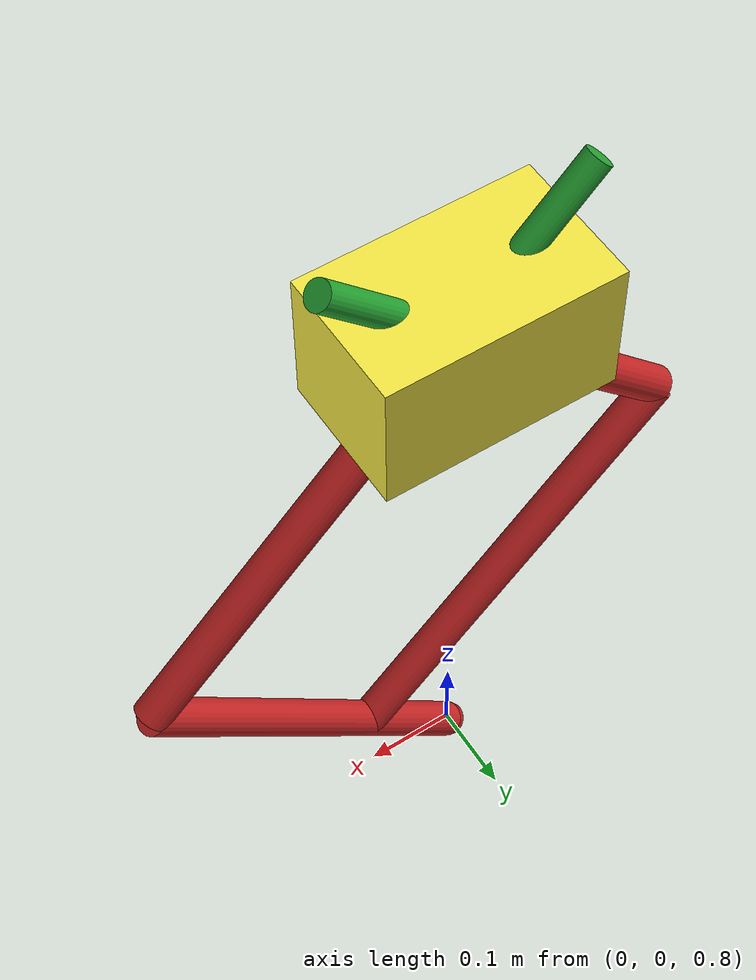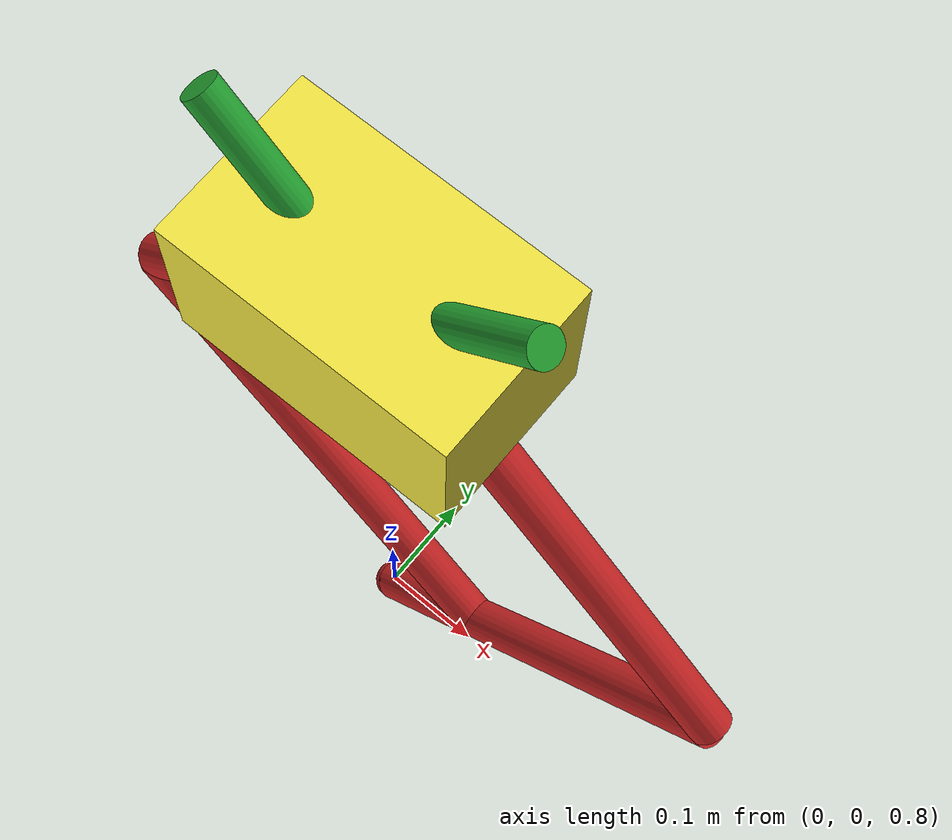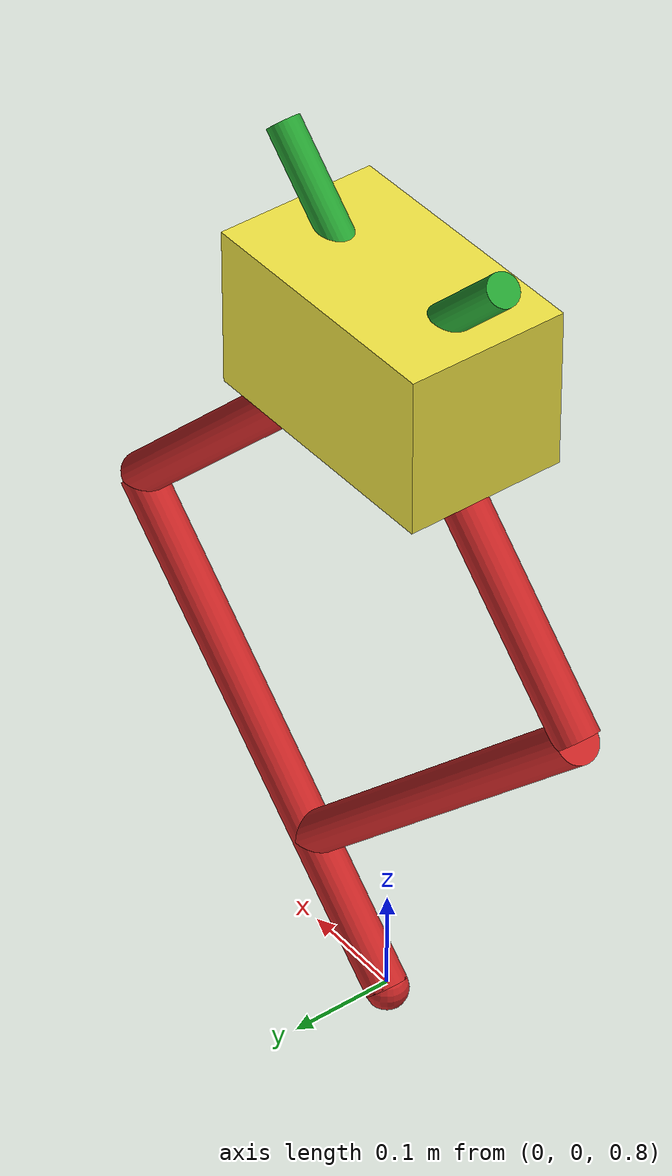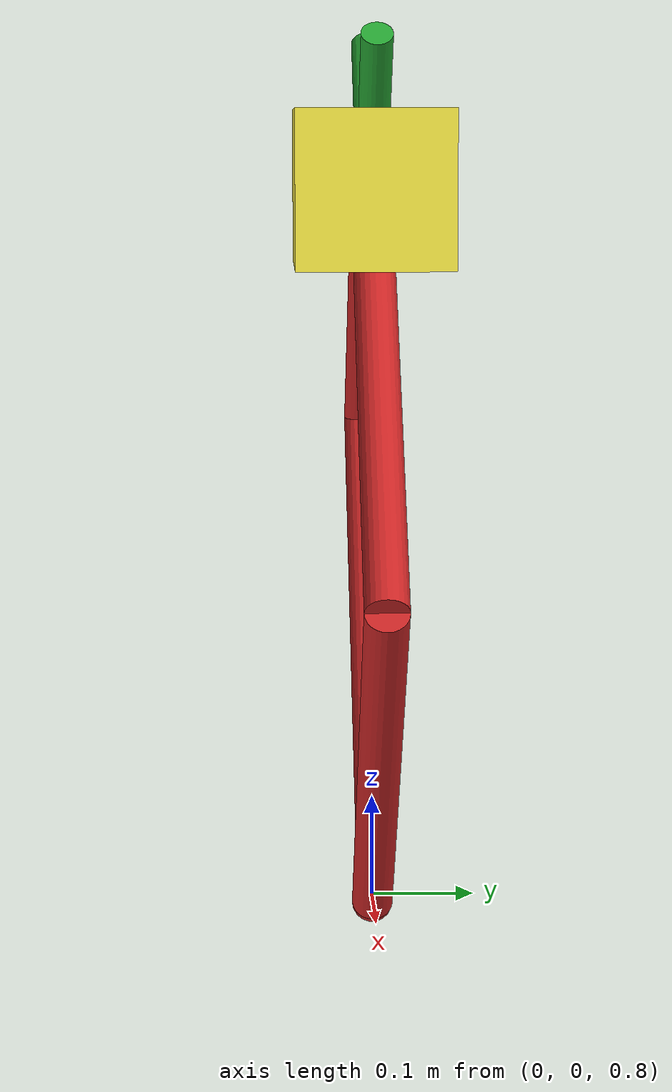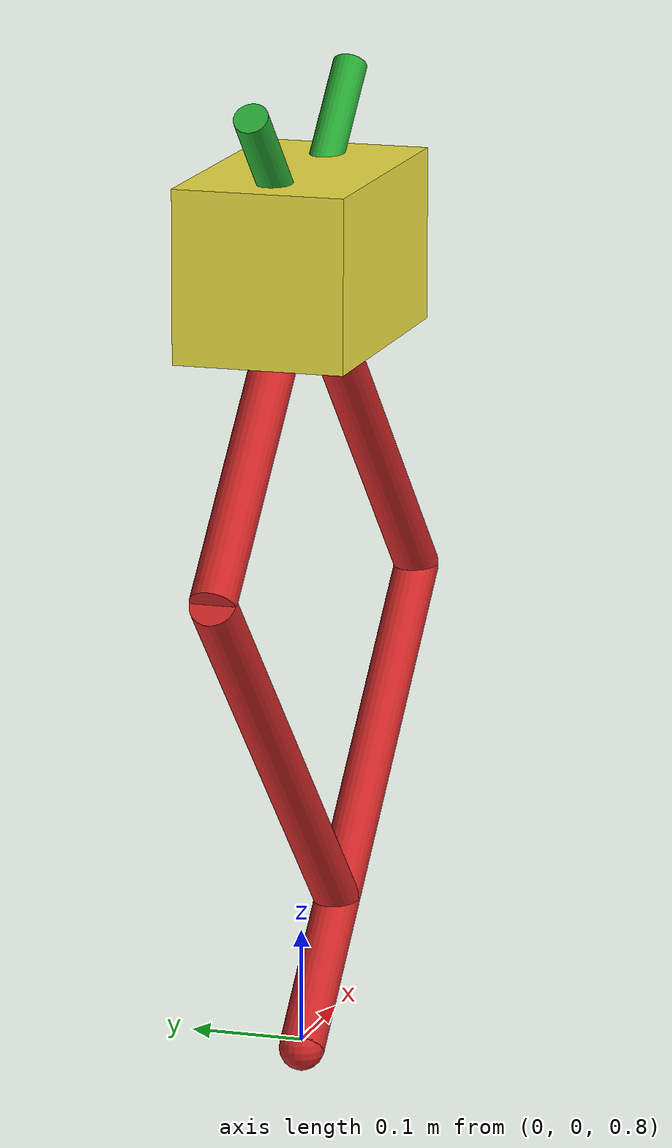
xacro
<?xml version="1.0"?>

<!-- Header File for ATRIAS 2.0 Robot Model -->
<!-- Adapted for ATRIAS 2.0 in Winter Term 2012 by Andrew Peekema and Matthew Rueben -->

<robot name="atrias"

	xmlns:sensor="http://playerstage.sourceforge.net/gazebo/xmlschema/#sensor"
	xmlns:controller="http://playerstage.sourceforge.net/gazebo/xmlschema/#controller"
	xmlns:joint="http://playerstage.sourceforge.net/gazebo/xmlschema/#slider"
	xmlns:xacro="http://www.ros.org/wiki/xacro"
	xmlns:interface="http://playerstage.sourceforge.net/gazebo/xmlschema/#interface"
	xmlns:model="http://playerstage.sourceforge.net/gazebo/xmlschema/#model"
	xmlns:geo="http://willowgarage.com/xmlschema/#geo"
	xmlns:geom="http://playerstage.sourceforge.net/gazebo/xmlschema/#geom"
	xmlns:body="http://playerstage.sourceforge.net/gazebo/xmlschema/#body" >

	<!-- get robot model as macro when parsed using xacro -->
	<include filename="atrias20_planar.urdf.xacro" />

	<!-- insert macro for robot model here -->
	<xacro:atrias_robot></xacro:atrias_robot>

	<!-- initializes the all-in-one controller with the correct link names, etc. -->
	<gazebo>
		<controller:all_in_one_controller_wrapper name="all_in_one_controller_wrapper" plugin="liball_in_one_controller_wrapper.so">
			<alwaysOn> true </alwaysOn>
			<updateRate> 1000 </updateRate>
			<bodyName> body_link </bodyName>
			<motorAName> thighMotor_link </motorAName>
			<motorBName> shinMotor_link </motorBName>
			<legAName> thigh_link </legAName>
			<legBName> shin_link </legBName>
		</controller:all_in_one_controller_wrapper>
	</gazebo>

</robot>

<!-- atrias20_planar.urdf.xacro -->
<!-- ATRIAS 2.0 Robot Model -->
<!-- Adapted for ATRIAS 2.0 in Winter Term 2012 by Andrew Peekema and Matthew Rueben -->

<!-- macro name used to insert this entire file into the header file when parsed by xacro -->
<robot name="atrias_robot"

	xmlns:sensor="http://playerstage.sourceforge.net/gazebo/xmlschema/#sensor"
	xmlns:controller="http://playerstage.sourceforge.net/gazebo/xmlschema/#controller"
	xmlns:joint="http://playerstage.sourceforge.net/gazebo/xmlschema/#slider"
	xmlns:xacro="http://www.ros.org/wiki/xacro"
	xmlns:interface="http://playerstage.sourceforge.net/gazebo/xmlschema/#interface"
	xmlns:model="http://playerstage.sourceforge.net/gazebo/xmlschema/#model"
	xmlns:geo="http://willowgarage.com/xmlschema/#geo"
	xmlns:geom="http://playerstage.sourceforge.net/gazebo/xmlschema/#geom"
	xmlns:body="http://playerstage.sourceforge.net/gazebo/xmlschema/#body" >

	<!-- Mathematical Constants -->
	<property name="M_PI" value="3.14159"/>
	<property name="SQRT_2" value="1.41421356"/>

	<!-- Visual Parameters (no effect on physical simulation) -->
	<property name="body_size" value="0.25 0.15 0.15" />
	<property name="visual_motor_radius" value="0.015" />
	<property name="leg_segment_radius" value="0.02" />
	<property name="toe_radius" value="0.02" />
	<property name="visual_motor_length" value="0.4" />

	<!-- Leg Segment Lengths -->
	<property name="thigh_length" value="0.500" />
	<property name="shin_length" value="0.350" />
	<property name="lower_length" value="0.500" />
	<property name="fourBar_length" value="0.500" />

	<!-- Link Masses -->
	<property name="body_mass" value="0.500" />
	<property name="motor_mass" value="0.500" />
	<property name="thigh_mass" value="3.132" />
	<property name="shin_mass" value="3.137" />
	<property name="lower_mass" value="0.204" />
	<property name="fourBar_mass" value="0.166" />
	<property name="toe_mass" value="0.087" />

	<!-- Spring/Damping Coefficients -->
	<property name="spring_stiffness" value="10000" />
	<property name="motor_damping" value="10000000" />
	<property name="motor_friction" value="10000000" />
	<property name="leg_damping" value="0" />
	<property name="leg_friction" value="0" />

	<xacro:macro name="atrias_robot">

		<!--							Planar Motion								-->

		<link name="world" />

		<joint name="world_joint" type="continuous">
			<origin xyz="0 0 0" rpy="0 0 0" />
			<axis xyz="0 1 0" />
			<parent link="world" />
			<child link="world_link"/>
		</joint>

		<link name="world_link">
			<inertial>
				<mass value="0.00001"/>
				<origin xyz="0 0 0" />
				<inertia ixx="0.00001" ixy="0" ixz="0"
				         iyy="0.00001" iyz="0"
				         izz="0.00001" />
			</inertial>
		</link>

		<joint name="planar_joint" type="prismatic">
			<origin xyz="0 0 1.5" rpy="0 0 0" />
			<axis xyz="0 0 1" />
			<limit upper="100" lower="-100" effort="1000000000" velocity="1000000000"/>
			<parent link="world_link" />
			<child link="body_no_twist_link"/>
		</joint>

		<link name="body_no_twist_link">
			<inertial>
				<mass value="0.00001"/>
				<origin xyz="0 0 0" />
				<inertia ixx="0.00001" ixy="0" ixz="0"
				         iyy="0.00001" iyz="0"
				         izz="0.00001" />
			</inertial>
		</link>

		<joint name="body_no_twist_joint" type="continuous">
			<origin xyz="0 0 0" rpy="0 0 0" />
			<axis xyz="0 1 0" />
			<parent link="body_no_twist_link" />
			<child link="body_link"/>
		</joint>

		<!--								Body                                     -->

		<link name="body_link">
			<inertial>
				<origin xyz="0 0 0.002" />
				<mass value="${body_mass}" />
				<inertia ixx="0.0932" ixy="0.0044" ixz="-0.0019"
						 iyy="0.0833" iyz="-0.0102"
					     izz="0.0785" />
			</inertial>
			<visual>
				<origin xyz="0 0 0" rpy="0 0 0" />
				<geometry>
				  <box size="${body_size}" />
				</geometry>
			</visual>
			<collision>
				<origin xyz="0 0 0" rpy="0 0 0" />
				<geometry>
				  <box size="${body_size}" />
				</geometry>
			</collision>
		</link>
		<gazebo reference="body_link">
			<material>Gazebo/BumpyMetal</material>
		</gazebo>

		<!--								Thigh Motor                              -->

		<joint name="hip_thighMotor_joint" type="revolute">
			<axis xyz="0 1 0" />
			<origin xyz="0 0 0" rpy="0 0 0" />
			<parent link="body_link" />
			<child link="thighMotor_link" />
			<limit lower="${-M_PI/4-0.3054}" upper="${-M_PI/4+2.3562}" effort="10000000000000" velocity="100000000000000" />
			<dynamics damping="${motor_damping}" friction="${motor_friction}" />
		</joint>

		<link name="thighMotor_link">
			<inertial>
				<mass value="${motor_mass}"/>
				<origin xyz="0 -0.044 0" />
				<inertia ixx="4" ixy="0" ixz="0"
				         iyy="7.25" iyz="0"
				         izz="4" />
			</inertial>
			<visual>
				<origin xyz="0 0 0" rpy="0 ${-M_PI/4} 0" />
				<geometry>
				  <cylinder length="${visual_motor_length}" radius="${visual_motor_radius}" />
				</geometry>
			</visual>
			<collision>
				<origin xyz="0 0 0" rpy="0 ${-M_PI/4} 0" />
				<geometry>
					<cylinder length="${visual_motor_length}" radius="${visual_motor_radius}" />
				</geometry>
			</collision>
		</link>

		<gazebo reference="thighMotor_link">
			<material> Gazebo/Green </material>
		</gazebo>

		<gazebo>
			<controller:spring name="thighSpring" plugin="libspring.so">
				<alwaysOn> true </alwaysOn>
				<updateRate> 10000 </updateRate>
				<bodyName1> thighMotor_link </bodyName1>
				<bodyName2> thigh_link </bodyName2>
				<rotationalStiffness> ${spring_stiffness} </rotationalStiffness>
			</controller:spring>
		</gazebo>

		<!--					Shin Motor                                           -->

		<joint name="hip_shinMotor_joint" type="revolute">
			<axis xyz="0 1 0" />
			<origin xyz="0 0 0" rpy="0 0 0" />
			<parent link="body_link" />
			<child link="shinMotor_link"/>
			<limit lower="${-5*M_PI/4+2.8362}" upper="${-5*M_PI/4+5.4978}" effort="10000000000000" velocity="100000000000000" />
			<dynamics damping="${motor_damping}" friction="${motor_friction}" />
		</joint>

		<link name="shinMotor_link">
			<inertial>
				<mass value="${motor_mass}"/>
				<origin xyz="0 0.044 0" />
				<inertia ixx="4" ixy="0" ixz="0"
				         iyy="7.25" iyz="0"
				         izz="4" />
			</inertial>
			<visual>
				<origin xyz="0 0 0" rpy="0 ${M_PI/4} 0" />
				<geometry>
				  <cylinder length="${visual_motor_length}" radius="${visual_motor_radius}" />
				</geometry>
			</visual>
			<collision>
				<origin xyz="0 0 0" rpy="0 ${M_PI/4} 0" />
				<geometry>
					<cylinder length="${visual_motor_length}" radius="${visual_motor_radius}" />
				</geometry>
			</collision>
		</link>

		<gazebo reference="shinMotor_link">
			<material>Gazebo/Green</material>
		</gazebo>

		<gazebo>
			<controller:spring name="shinSpring" plugin="libspring.so">
				<alwaysOn> true </alwaysOn>
				<updateRate> 10000 </updateRate>
				<bodyName1> shinMotor_link </bodyName1>
				<bodyName2> shin_link </bodyName2>
				<rotationalStiffness> ${spring_stiffness} </rotationalStiffness>
			</controller:spring>
		</gazebo>

		<!--							 Thigh 										-->

		<joint name="body_thigh_joint" type="continuous">
			<axis xyz="0 1 0" />
			<origin xyz="0 0 0" rpy="0 0 0" />
			<parent link="body_link" />
			<child link="thigh_link"/>
			<!--limit lower="${-M_PI/4-0.6545}" upper="${-M_PI/4+2.7053}" effort="1000000000000" velocity="100000000000000" /-->
			<dynamics damping="${leg_damping}" friction="${leg_friction}" />
		</joint>

		<link name="thigh_link">
			<inertial>
				<mass value="${thigh_mass}"/>
				<origin xyz="0.100 -0.020 -0.011" />
				<inertia ixx="0.0339" ixy="0.0056" ixz="-0.0179"
				         iyy="0.0688" iyz="-0.0017"
				         izz="0.0512" />
			</inertial>
			<visual>
				<origin xyz="${thigh_length/SQRT_2/2} 0 ${-thigh_length/SQRT_2/2}" rpy="0 ${-M_PI/4} 0" />
				<geometry>
				  <cylinder length="${thigh_length}" radius="${leg_segment_radius}" />
				</geometry>
			</visual>
			<collision>
				<origin xyz="${thigh_length/SQRT_2/2} 0 ${-thigh_length/SQRT_2/2}" rpy="0 ${-M_PI/4} 0" />
				<geometry>
					<cylinder length="${thigh_length}" radius="${leg_segment_radius}" />
				</geometry>
			</collision>
		</link>

		<gazebo reference="thigh_link">
			<material>Gazebo/Red</material>
		</gazebo>

		<!--							 Shin 			 							-->

		<joint name="body_shin_joint" type="continuous">
			<axis xyz="0 1 0" />
			<origin xyz="0 0 0" rpy="0 0 0" />
			<parent link="body_link" />
			<child link="shin_link"/>
			<!--limit lower="${-5*M_PI/4+2.4871}" upper="${-5*M_PI/4+5.4978}" effort="100000000000" velocity="100000000000000" /-->
			<dynamics damping="${leg_damping}" friction="${leg_friction}" />
		</joint>

		<link name="shin_link">
			<inertial>
				<mass value="${shin_mass}"/>
				<origin xyz="-0.0979 0.0200 -0.0081" />
				<inertia ixx="0.0309" ixy="0.0054" ixz="0.0154"
				         iyy="0.0637" iyz="0.0014"
				         izz="0.0493" />
			</inertial>
			<visual>
				<origin xyz="${-shin_length/SQRT_2/2} 0 ${-shin_length/SQRT_2/2}" rpy="0 ${M_PI/4} 0" />
				<geometry>
				  <cylinder length="${shin_length}" radius="${leg_segment_radius}" />
				</geometry>
			</visual>
			<collision>
				<origin xyz="${-shin_length/SQRT_2/2} 0 ${-shin_length/SQRT_2/2}" rpy="0 ${M_PI/4} 0" />
				<geometry>
					<cylinder length="${shin_length}" radius="${leg_segment_radius}" />
				</geometry>
			</collision>
		</link>

		<gazebo reference="shin_link">
			<material>Gazebo/Red</material>
		</gazebo>

		<!--								 Lower Link					 			-->

		<joint name="thigh_lower_joint" type="continuous">
			<axis xyz="0 1 0" />
			<origin xyz="${thigh_length/SQRT_2} 0 ${-thigh_length/SQRT_2}" rpy="0 0 0" />
			<parent link="thigh_link" />
			<child link="lower_link"/>
			<limit lower="${-M_PI/2}" upper="${M_PI/2}" effort="10000000000000" velocity="100000000000000" />
			<dynamics damping="${leg_damping}" friction="${leg_friction}" />
		</joint>

		<link name="lower_link">
			<inertial>
				<mass value="${lower_mass}"/>
				<origin xyz="-0.127 0 -0.141" />
				<inertia ixx="0.0027" ixy="0" ixz="0.0026"
				         iyy="0.0054" iyz="0"
				         izz="0.0028" />
			</inertial>
			<visual>
				<origin xyz="${-lower_length/SQRT_2/2} 0 ${-lower_length/SQRT_2/2}" rpy="0 ${M_PI/4} 0" />
				<geometry>
				  <cylinder length="${lower_length}" radius="${leg_segment_radius}" />
				</geometry>
			</visual>
			<collision>
				<origin xyz="${-lower_length/SQRT_2/2} 0 ${-lower_length/SQRT_2/2}" rpy="0 ${M_PI/4} 0" />
				<geometry>
					<cylinder length="${lower_length}" radius="${leg_segment_radius}" />
				</geometry>
			</collision>
		</link>

		<gazebo reference="lower_link">
			<material>Gazebo/Red</material>
		</gazebo>

		<!--								 Four Bar	 							-->

		<joint name="shin_fourBar_joint" type="continuous">
			<axis xyz="0 1 0" />
			<origin xyz="${-shin_length/SQRT_2} 0 ${-shin_length/SQRT_2}" rpy="0 0 0" />
			<parent link="shin_link" />
			<child link="fourBar_link"/>
			<limit lower="${-M_PI/2}" upper="${M_PI/2}" effort="10000000000000" velocity="100000000000000" />
			<dynamics damping="${leg_damping}" friction="${leg_friction}" />
		</joint>

		<link name="fourBar_link">
			<inertial>
				<mass value="${fourBar_mass}"/>
				<origin xyz="0.1633 0 -0.1633" />
				<inertia ixx="0.0033" ixy="0" ixz="-0.0032"
				         iyy="0.0063" iyz="0"
				         izz="0.0033" />
			</inertial>
			<visual>
				<origin xyz="${fourBar_length/SQRT_2/2} 0 ${-fourBar_length/SQRT_2/2}" rpy="0 ${-M_PI/4} 0" />
				<geometry>
				  <cylinder length="${fourBar_length}" radius="${leg_segment_radius}" />
				</geometry>
			</visual>
			<collision>
				<origin xyz="${fourBar_length/SQRT_2/2} 0 ${-fourBar_length/SQRT_2/2}" rpy="0 ${-M_PI/4} 0" />
				<geometry>
					<cylinder length="${fourBar_length}" radius="${leg_segment_radius}" />
				</geometry>
			</collision>
		</link>

		<gazebo reference="fourBar_link">
			<material>Gazebo/Red</material>
		</gazebo>

		<!--							Four Bar Linkage Joint						-->

		<gazebo>
			<joint:hinge name="lower_fourBar_joint">
				<body1>lower_link</body1>
				<body2>fourBar_link</body2>
				<anchor>lower_link</anchor>
				<axis>0 1 0</axis>
				<anchorOffset>${-(lower_length-0.15)/SQRT_2} 0 ${-(lower_length-0.15)/SQRT_2}</anchorOffset>
			</joint:hinge>
		</gazebo>

		<!--							Toe											-->

		<joint name="lower_toe_joint" type="fixed">
			<origin xyz="${-lower_length/SQRT_2} 0 ${-lower_length/SQRT_2}" rpy="0 0 0" />
			<parent link="lower_link" />
			<child link="toe_link"/>
		</joint>

		<link name="toe_link">
			<inertial>
				<mass value="${toe_mass}"/>
				<origin xyz="0 0 0" />
				<inertia ixx="0.0000001" ixy="0" ixz="0"
				         iyy="0.0000001" iyz="0"
				         izz="0.0000001" />
			</inertial>
			<visual>
				<origin xyz="0 0 0" rpy="0 0 0" />
				<geometry>
				  <sphere radius="${toe_radius}" />
				</geometry>
			</visual>
			<collision>
				<origin xyz="0 0 0" rpy="0 0 0" />
				<geometry>
					<sphere radius="${toe_radius}" />
				</geometry>
			</collision>
		</link>

		<gazebo reference="toe_link">
			<material>Gazebo/Red</material>
		</gazebo>

	</xacro:macro>

</robot>
